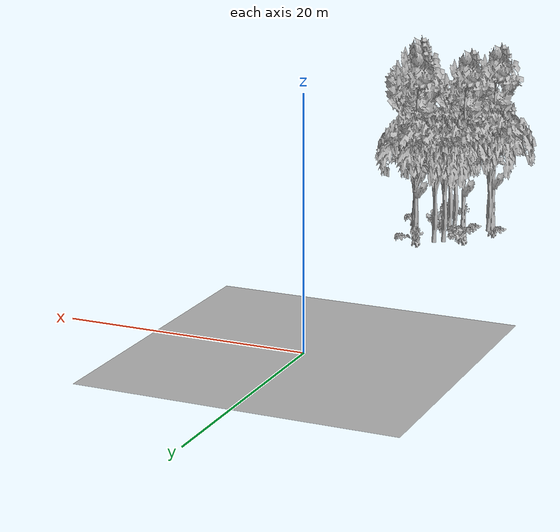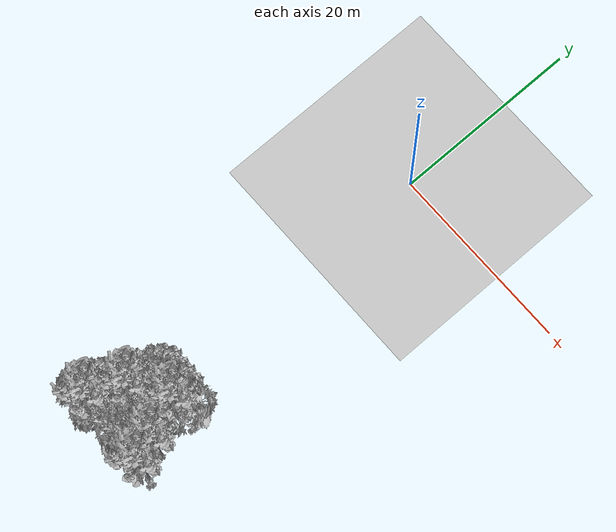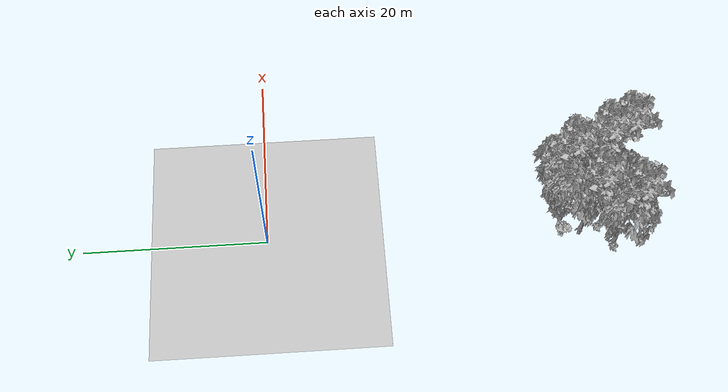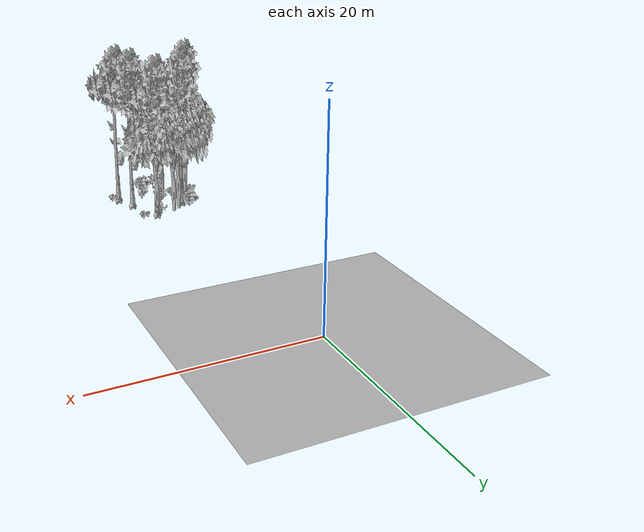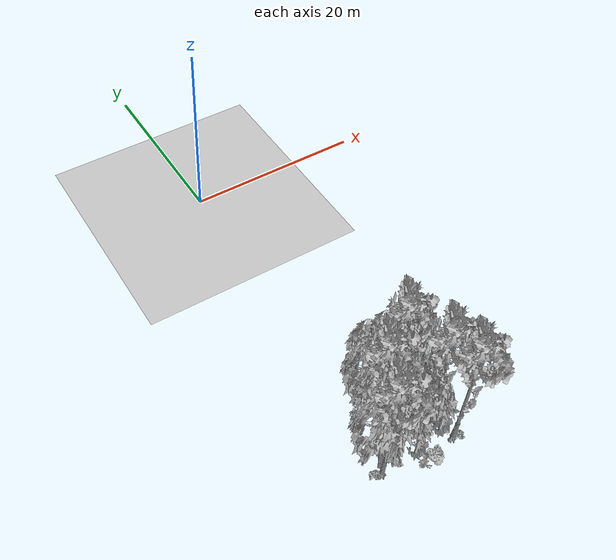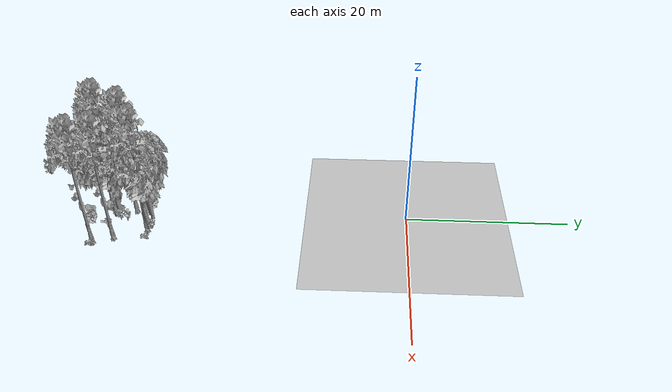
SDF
<sdf version="1.7">
 <world name="default">
  <model name="ground_plane">
   <static>1</static>
   <link name="link">
    <collision name="collision">
     <pose>-50 0 0 0 -0 0</pose>
     <geometry><plane><normal>0 0 1</normal><size>80 80</size></plane></geometry>
     <surface><contact><ode><min_depth>0.01</min_depth><max_vel>0</max_vel></ode></contact></surface>
    </collision>
    <visual name="grass">
     <cast_shadows>0</cast_shadows>
     <geometry>
      <mesh>
       <scale>0.46714285714285714 0.46714285714285714 0.1</scale>
       <uri>file://grass_plane/meshes/grass_plane.dae</uri>
      </mesh>
     </geometry>
    </visual>
   </link>
  </model>
  <model name="Tree 62">
   <static>1</static>
   <pose>1.1364604474755566 -31.660868998498756 0 1.57079 -0 0</pose>
   <link name="link">
    <collision name="collision">
     <geometry><mesh><scale>3.5 5 3.5</scale><uri>model://tree_2/meshes/tree_2.obj</uri></mesh></geometry>
    </collision>
    <visual name="visual">
     <geometry><mesh><scale>3.5 5 3.5</scale><uri>model://tree_2/meshes/tree_2.obj</uri></mesh></geometry>
    </visual>
   </link>
  </model>
  <model name="Tree 83">
   <static>1</static>
   <pose>-0.606513448238239 -34.211481427423365 0 1.57079 -0 0</pose>
   <link name="link">
    <collision name="collision">
     <geometry><mesh><scale>3.5 5 3.5</scale><uri>model://tree_9/meshes/tree_9.obj</uri></mesh></geometry>
    </collision>
    <visual name="visual">
     <geometry><mesh><scale>3.5 5 3.5</scale><uri>model://tree_9/meshes/tree_9.obj</uri></mesh></geometry>
    </visual>
   </link>
  </model>
  <model name="Tree 94">
   <static>1</static>
   <pose>-2.1753283604775007 -37.02410989789002 0 1.57079 -0 0</pose>
   <link name="link">
    <collision name="collision">
     <geometry><mesh><scale>3.5 5 3.5</scale><uri>model://tree_2/meshes/tree_2.obj</uri></mesh></geometry>
    </collision>
    <visual name="visual">
     <geometry><mesh><scale>3.5 5 3.5</scale><uri>model://tree_2/meshes/tree_2.obj</uri></mesh></geometry>
    </visual>
   </link>
  </model>
  <model name="Tree 158">
   <static>1</static>
   <pose>5.5034152464489665 -38.05751331076341 0 1.57079 -0 0</pose>
   <link name="link">
    <collision name="collision">
     <geometry><mesh><scale>3.5 5 3.5</scale><uri>model://tree_9/meshes/tree_9.obj</uri></mesh></geometry>
    </collision>
    <visual name="visual">
     <geometry><mesh><scale>3.5 5 3.5</scale><uri>model://tree_9/meshes/tree_9.obj</uri></mesh></geometry>
    </visual>
   </link>
  </model>
  <model name="Tree 226">
   <static>1</static>
   <pose>0.8534766881372562 -36.37101544842495 0 1.57079 -0 0</pose>
   <link name="link">
    <collision name="collision">
     <geometry><mesh><scale>3.5 5 3.5</scale><uri>model://tree_2/meshes/tree_2.obj</uri></mesh></geometry>
    </collision>
    <visual name="visual">
     <geometry><mesh><scale>3.5 5 3.5</scale><uri>model://tree_2/meshes/tree_2.obj</uri></mesh></geometry>
    </visual>
   </link>
  </model>
  <model name="Tree 267">
   <static>1</static>
   <pose>3.071240090361563 -31.955558702621687 0 1.57079 -0 0</pose>
   <link name="link">
    <collision name="collision">
     <geometry><mesh><scale>3.5 5 3.5</scale><uri>model://tree_9/meshes/tree_9.obj</uri></mesh></geometry>
    </collision>
    <visual name="visual">
     <geometry><mesh><scale>3.5 5 3.5</scale><uri>model://tree_9/meshes/tree_9.obj</uri></mesh></geometry>
    </visual>
   </link>
  </model>
  <model name="Tree 330">
   <static>1</static>
   <pose>3.0462560092298787 -31.69424739148658 0 1.57079 -0 0</pose>
   <link name="link">
    <collision name="collision">
     <geometry><mesh><scale>3.5 5 3.5</scale><uri>model://tree_2/meshes/tree_2.obj</uri></mesh></geometry>
    </collision>
    <visual name="visual">
     <geometry><mesh><scale>3.5 5 3.5</scale><uri>model://tree_2/meshes/tree_2.obj</uri></mesh></geometry>
    </visual>
   </link>
  </model>
  <model name="Tree 408">
   <static>1</static>
   <pose>1.1113289355223301 -35.66375698497275 0 1.57079 -0 0</pose>
   <link name="link">
    <collision name="collision">
     <geometry><mesh><scale>3.5 5 3.5</scale><uri>model://tree_2/meshes/tree_2.obj</uri></mesh></geometry>
    </collision>
    <visual name="visual">
     <geometry><mesh><scale>3.5 5 3.5</scale><uri>model://tree_2/meshes/tree_2.obj</uri></mesh></geometry>
    </visual>
   </link>
  </model>
  <model name="Tree 425">
   <static>1</static>
   <pose>-2.2469299131378477 -37.65330813938925 0 1.57079 -0 0</pose>
   <link name="link">
    <collision name="collision">
     <geometry><mesh><scale>3.5 5 3.5</scale><uri>model://tree_9/meshes/tree_9.obj</uri></mesh></geometry>
    </collision>
    <visual name="visual">
     <geometry><mesh><scale>3.5 5 3.5</scale><uri>model://tree_9/meshes/tree_9.obj</uri></mesh></geometry>
    </visual>
   </link>
  </model>
  <model name="Tree 449">
   <static>1</static>
   <pose>0.4027347594298831 -32.144612464614994 0 1.57079 -0 0</pose>
   <link name="link">
    <collision name="collision">
     <geometry><mesh><scale>3.5 5 3.5</scale><uri>model://tree_2/meshes/tree_2.obj</uri></mesh></geometry>
    </collision>
    <visual name="visual">
     <geometry><mesh><scale>3.5 5 3.5</scale><uri>model://tree_2/meshes/tree_2.obj</uri></mesh></geometry>
    </visual>
   </link>
  </model>
  <model name="Tree 594">
   <static>1</static>
   <pose>4.618691063723489 -35.75075040848837 0 1.57079 -0 0</pose>
   <link name="link">
    <collision name="collision">
     <geometry><mesh><scale>3.5 5 3.5</scale><uri>model://tree_9/meshes/tree_9.obj</uri></mesh></geometry>
    </collision>
    <visual name="visual">
     <geometry><mesh><scale>3.5 5 3.5</scale><uri>model://tree_9/meshes/tree_9.obj</uri></mesh></geometry>
    </visual>
   </link>
  </model>
  <model name="Bush 162">
   <static>1</static>
   <pose>2.465147241366644 -39.13074166419055 0 1.57079 -0 0</pose>
   <link name="link">
    <collision name="collision">
     <geometry><mesh><scale>2 2 2</scale><uri>model://bush_1/meshes/bush_1.obj</uri></mesh></geometry>
     <surface><contact><collide_without_contact>false</collide_without_contact></contact></surface>
    </collision>
    <visual name="visual">
     <geometry><mesh><scale>2 2 2</scale><uri>model://bush_1/meshes/bush_1.obj</uri></mesh></geometry>
    </visual>
   </link>
  </model>
  <model name="Bush 216">
   <static>1</static>
   <pose>-0.7899637015697607 -32.28252016807897 0 1.57079 -0 0</pose>
   <link name="link">
    <collision name="collision">
     <geometry><mesh><scale>2 2 2</scale><uri>model://bush_1/meshes/bush_1.obj</uri></mesh></geometry>
     <surface><contact><collide_without_contact>false</collide_without_contact></contact></surface>
    </collision>
    <visual name="visual">
     <geometry><mesh><scale>2 2 2</scale><uri>model://bush_1/meshes/bush_1.obj</uri></mesh></geometry>
    </visual>
   </link>
  </model>
  <model name="Bush 250">
   <static>1</static>
   <pose>2.876174514430218 -31.385436332732315 0 1.57079 -0 0</pose>
   <link name="link">
    <collision name="collision">
     <geometry><mesh><scale>2 2 2</scale><uri>model://bush_4/meshes/bush_4.obj</uri></mesh></geometry>
     <surface><contact><collide_without_contact>false</collide_without_contact></contact></surface>
    </collision>
    <visual name="visual">
     <geometry><mesh><scale>2 2 2</scale><uri>model://bush_4/meshes/bush_4.obj</uri></mesh></geometry>
    </visual>
   </link>
  </model>
  <model name="Bush 314">
   <static>1</static>
   <pose>-0.5518856255000557 -37.54136989328834 0 1.57079 -0 0</pose>
   <link name="link">
    <collision name="collision">
     <geometry><mesh><scale>2 2 2</scale><uri>model://bush_2/meshes/bush_2.obj</uri></mesh></geometry>
     <surface><contact><collide_without_contact>false</collide_without_contact></contact></surface>
    </collision>
    <visual name="visual">
     <geometry><mesh><scale>2 2 2</scale><uri>model://bush_2/meshes/bush_2.obj</uri></mesh></geometry>
    </visual>
   </link>
  </model>
  <model name="Bush 327">
   <static>1</static>
   <pose>4.515193780826351 -31.865035726523267 0 1.57079 -0 0</pose>
   <link name="link">
    <collision name="collision">
     <geometry><mesh><scale>2 2 2</scale><uri>model://bush_2/meshes/bush_2.obj</uri></mesh></geometry>
     <surface><contact><collide_without_contact>false</collide_without_contact></contact></surface>
    </collision>
    <visual name="visual">
     <geometry><mesh><scale>2 2 2</scale><uri>model://bush_2/meshes/bush_2.obj</uri></mesh></geometry>
    </visual>
   </link>
  </model>
  <model name="Bush 352">
   <static>1</static>
   <pose>1.7293576841868799 -35.49363045120704 0 1.57079 -0 0</pose>
   <link name="link">
    <collision name="collision">
     <geometry><mesh><scale>2 2 2</scale><uri>model://bush_5/meshes/bush_5.obj</uri></mesh></geometry>
     <surface><contact><collide_without_contact>false</collide_without_contact></contact></surface>
    </collision>
    <visual name="visual">
     <geometry><mesh><scale>2 2 2</scale><uri>model://bush_5/meshes/bush_5.obj</uri></mesh></geometry>
    </visual>
   </link>
  </model>
  <model name="Bush 441">
   <static>1</static>
   <pose>1.1243968644437672 -39.059866190354775 0 1.57079 -0 0</pose>
   <link name="link">
    <collision name="collision">
     <geometry><mesh><scale>2 2 2</scale><uri>model://bush_5/meshes/bush_5.obj</uri></mesh></geometry>
     <surface><contact><collide_without_contact>false</collide_without_contact></contact></surface>
    </collision>
    <visual name="visual">
     <geometry><mesh><scale>2 2 2</scale><uri>model://bush_5/meshes/bush_5.obj</uri></mesh></geometry>
    </visual>
   </link>
  </model>
  <model name="Bush 466">
   <static>1</static>
   <pose>-0.4876393335803826 -36.179768699575945 0 1.57079 -0 0</pose>
   <link name="link">
    <collision name="collision">
     <geometry><mesh><scale>2 2 2</scale><uri>model://bush_2/meshes/bush_2.obj</uri></mesh></geometry>
     <surface><contact><collide_without_contact>false</collide_without_contact></contact></surface>
    </collision>
    <visual name="visual">
     <geometry><mesh><scale>2 2 2</scale><uri>model://bush_2/meshes/bush_2.obj</uri></mesh></geometry>
    </visual>
   </link>
  </model>
  <model name="Bush 476">
   <static>1</static>
   <pose>6.012060517618366 -38.23640920152863 0 1.57079 -0 0</pose>
   <link name="link">
    <collision name="collision">
     <geometry><mesh><scale>2 2 2</scale><uri>model://bush_2/meshes/bush_2.obj</uri></mesh></geometry>
     <surface><contact><collide_without_contact>false</collide_without_contact></contact></surface>
    </collision>
    <visual name="visual">
     <geometry><mesh><scale>2 2 2</scale><uri>model://bush_2/meshes/bush_2.obj</uri></mesh></geometry>
    </visual>
   </link>
  </model>
  <model name="Bush 486">
   <static>1</static>
   <pose>3.2323367286919265 -36.641387247543086 0 1.57079 -0 0</pose>
   <link name="link">
    <collision name="collision">
     <geometry><mesh><scale>2 2 2</scale><uri>model://bush_0/meshes/bush_0.obj</uri></mesh></geometry>
     <surface><contact><collide_without_contact>false</collide_without_contact></contact></surface>
    </collision>
    <visual name="visual">
     <geometry><mesh><scale>2 2 2</scale><uri>model://bush_0/meshes/bush_0.obj</uri></mesh></geometry>
    </visual>
   </link>
  </model>
  <model name="Bush 520">
   <static>1</static>
   <pose>-2.964668419911405 -37.520812092846526 0 1.57079 -0 0</pose>
   <link name="link">
    <collision name="collision">
     <geometry><mesh><scale>2 2 2</scale><uri>model://bush_2/meshes/bush_2.obj</uri></mesh></geometry>
     <surface><contact><collide_without_contact>false</collide_without_contact></contact></surface>
    </collision>
    <visual name="visual">
     <geometry><mesh><scale>2 2 2</scale><uri>model://bush_2/meshes/bush_2.obj</uri></mesh></geometry>
    </visual>
   </link>
  </model>
  <model name="Bush 615">
   <static>1</static>
   <pose>1.7246969986903196 -34.68401767383042 0 1.57079 -0 0</pose>
   <link name="link">
    <collision name="collision">
     <geometry><mesh><scale>2 2 2</scale><uri>model://bush_0/meshes/bush_0.obj</uri></mesh></geometry>
     <surface><contact><collide_without_contact>false</collide_without_contact></contact></surface>
    </collision>
    <visual name="visual">
     <geometry><mesh><scale>2 2 2</scale><uri>model://bush_0/meshes/bush_0.obj</uri></mesh></geometry>
    </visual>
   </link>
  </model>
 </world>
</sdf>
